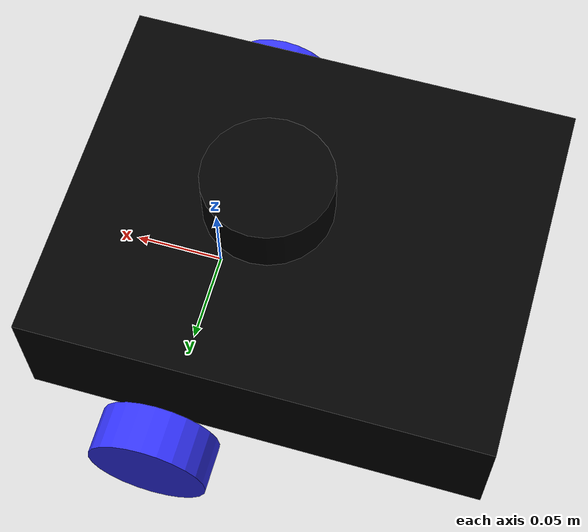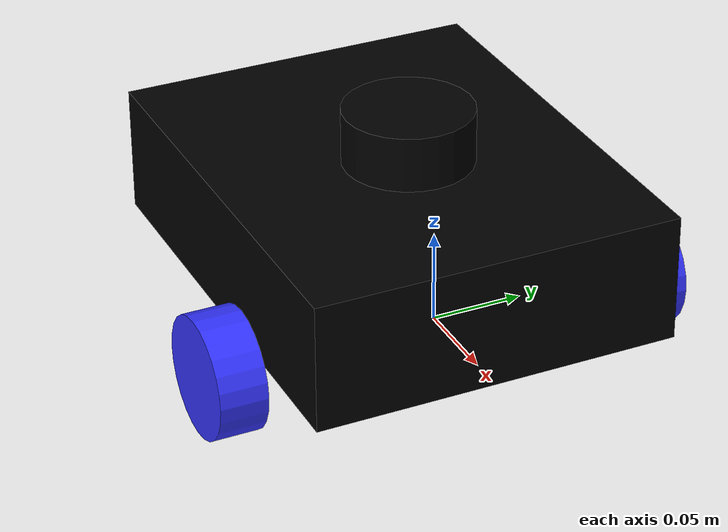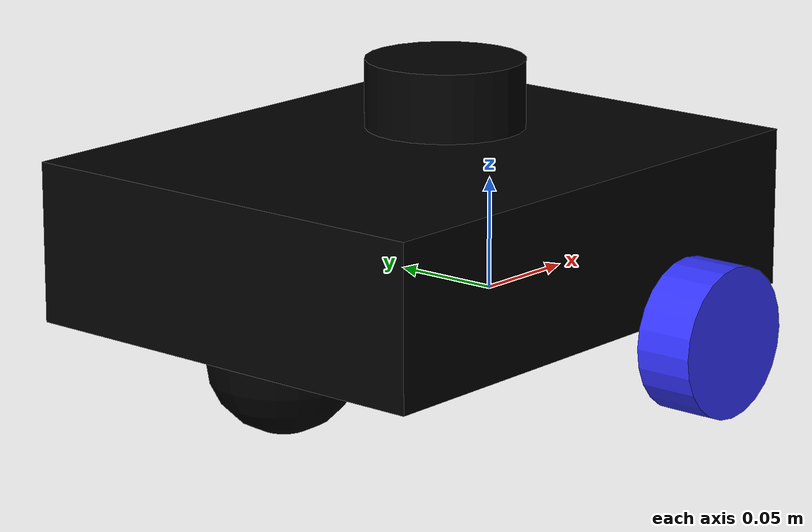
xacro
<?xml version="1.0"?>
<robot xmlns:xacro="http://www.ros.org/wiki/xacro" name="robot">

    <xacro:arg name="use_ros2_control" default="true"/>
    <xacro:arg name="sim_mode" default="false"/>

    <xacro:include filename = "base_robot.xacro"  />

    <xacro:if value="$(arg use_ros2_control)">
        <xacro:include filename="ros2_control.xacro" />
    </xacro:if>

    <xacro:unless value="$(arg use_ros2_control)">
        <xacro:include filename = "control_gazebo.xacro"  />
    </xacro:unless>

    <xacro:include filename = "lidar.xacro"  />

</robot>

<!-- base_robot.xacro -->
<robot xmlns:xacro="http://www.ros.org/wiki/xacro">

    <xacro:include filename="macros_inercia.xacro"/>

    <xacro:property name="largo_chassis" value="0.250"/>
    <xacro:property name="ancho_chassis" value="0.200"/>
    <xacro:property name="altura_chassis" value="0.070"/>
    <xacro:property name="masa_chassis" value="1.0"/>
    <xacro:property name="radio_rueda" value="0.033"/>
    <xacro:property name="ancho_rueda" value="0.026"/>
    <xacro:property name="masa_rueda" value="0.05"/>
    <xacro:property name="rueda_offset_x" value="0.0755"/>
    <xacro:property name="rueda_offset_y" value="0.120"/>
    <xacro:property name="rueda_offset_z" value="0.004"/>
    <xacro:property name="radio_rueda_mobil" value="0.033"/>
    <xacro:property name="masa_rueda_mobil" value="0.01"/>
    <xacro:property name="rueda_mobil_offset_x" value="0.210"/>
    <xacro:property name="rueda_mobil_offset_z" value="-0.004"/>

    <material name="white">
        <color rgba="1 1 1 1" />
    </material>

    <material name="orange">
        <color rgba="1 0.3 0.1 1" />
    </material>

    <material name="blue">
        <color rgba="0.2 0.2 1 1" />
    </material>

    <material name="black">
        <color rgba="0 0 0 1" />
    </material>

    <!-- LINK BASE -->

    <link name ="base_link">

    </link>

    <!-- LINK BASE_FOOTPRINT -->

    <joint name="base_footprint_joint" type="fixed">
        <parent link="base_link"/>
        <child link="base_footprint"/>
        <origin xyz="0 0 0" rpy="0 0 0"/>
    </joint>

    <link name="base_footprint"/>

    <!-- LINK DEL CHASIS -->

    <joint name = "joint_chasis" type ="fixed">
        <parent link ="base_link"/>
        <child link ="chasis"/>
        <origin xyz="${rueda_offset_x} 0 ${rueda_offset_z}"/>
    </joint>

    <link name ="chasis">
        <visual>
            <origin xyz ="${-largo_chassis/2} 0 ${altura_chassis/2}"/>
            <geometry>
                <box size ="${largo_chassis} ${ancho_chassis} ${altura_chassis}"/>
            </geometry>
            <material name ="black"/>
        </visual>
        <collision>
            <origin xyz ="${-largo_chassis/2} 0 ${altura_chassis/2}"/>
            <geometry>
                <box size ="${largo_chassis} ${ancho_chassis} ${altura_chassis}"/>
            </geometry>
        </collision>
        <xacro:inercia_caja masa="1.0" largo="${largo_chassis}" ancho="${ancho_chassis}" altura="${altura_chassis}">
            <origin xyz="${-largo_chassis/2} 0 ${altura_chassis/2}" rpy ="0 0 0"/>
        </xacro:inercia_caja>
    </link>

    <gazebo reference="chasis">
        <material>Gazebo/Black</material>
    </gazebo>

    <!-- LINK RUEDA IZQUIERDA -->

    <joint name = "joint_roda_esquerra" type = "continuous">
        <parent link="base_link"/>
        <child link="roda_esquerra"/>
        <origin xyz="0 ${rueda_offset_y} 0" rpy ="-${pi/2} 0 0"/>
        <axis xyz="0 0 1"/>

    </joint>

    <link name = "roda_esquerra">
        <visual>
            <geometry>
                <cylinder radius = "${radio_rueda}" length="${ancho_rueda}"/>
            </geometry>
            <material name = "blue"/>
        </visual>
        <collision>
            <geometry>
                <cylinder radius = "${radio_rueda}" length="${ancho_rueda}"/>
            </geometry>
        </collision>
        <xacro:inercia_cilindro masa="${masa_rueda}" largo="${ancho_rueda}" radio="${radio_rueda}">
            <origin xyz="0 0 0" rpy ="0 0 0"/>
        </xacro:inercia_cilindro>
    </link>

    <gazebo reference="roda_esquerra">
        <material>Gazebo/Blue</material>
    </gazebo>

    <!-- LINK RUEDA DERECHA -->

    <joint name = "joint_roda_dreta" type = "continuous">
        <parent link="base_link"/>
        <child link="roda_dreta"/>
        <origin xyz="0 ${-rueda_offset_y} 0" rpy ="${pi/2} 0 0"/>
        <axis xyz="0 0 -1"/>

    </joint>

    <link name = "roda_dreta">
        <visual>
            <geometry>
                <cylinder radius = "${radio_rueda}" length="${ancho_rueda}"/>
            </geometry>
            <material name = "blue"/>
        </visual>
        <collision>
            <geometry>
                <cylinder radius = "${radio_rueda}" length="${ancho_rueda}"/>
            </geometry>
        </collision>
        <xacro:inercia_cilindro masa="${masa_rueda}" largo="${ancho_rueda}" radio="${radio_rueda}">
            <origin xyz="0 0 0" rpy ="0 0 0"/>
        </xacro:inercia_cilindro>
    </link>

    <gazebo reference="roda_dreta">
        <material>Gazebo/Blue</material>
    </gazebo>

    <!-- LINK RUEDA MÓVIL -->

    <joint name="joint_roda_mobil" type="fixed">
        <parent link="chasis"/>
        <child link="roda_mobil"/>
        <origin xyz="${-rueda_mobil_offset_x} 0 ${rueda_mobil_offset_z}"/>
    </joint>

    <link name="roda_mobil">
        <visual>
            <geometry>
                <sphere radius="${radio_rueda_mobil}"/>
            </geometry>
            <material name="black"/>
        </visual>
        <collision>
            <geometry>
                <sphere radius="${radio_rueda_mobil}"/>
            </geometry>
        </collision>
        <xacro:inercia_esfera masa="${masa_rueda_mobil}" radio="${radio_rueda_mobil}">
            <origin xyz="0 0 0" rpy ="0 0 0"/>
        </xacro:inercia_esfera>
    </link>

    <gazebo reference="roda_mobil">
        <material>Gazebo/Black</material>
        <mu1 value= "0.001"/>
        <mu2 value= "0.001"/>
    </gazebo>
</robot>

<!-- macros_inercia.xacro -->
<robot xmlns:xacro="http://www.ros.org/wiki/xacro" >

    <!-- Macro para calcular la inercia de una esfera -->
    <xacro:macro name="inercia_esfera" params="masa radio *origin">
        <inertial>
            <xacro:insert_block name="origin"/>
            <mass value="${masa}" />
            <inertia ixx="${(2/5) * masa * (radio*radio)}" ixy="0.0" ixz="0.0"
                    iyy="${(2/5) * masa * (radio*radio)}" iyz="0.0"
                    izz="${(2/5) * masa * (radio*radio)}" />
        </inertial>
    </xacro:macro>

    <!-- Macro para calcular la inercia de un cilindro -->
    <xacro:macro name="inercia_cilindro" params="masa largo radio *origin">
        <inertial>
            <xacro:insert_block name="origin"/>
            <mass value="${masa}" />
            <inertia ixx="${(1/12) * masa * (3*radio*radio + largo*largo)}" ixy="0.0" ixz="0.0"
                    iyy="${(1/12) * masa * (3*radio*radio + largo*largo)}" iyz="0.0"
                    izz="${(1/2) * masa * (radio*radio)}" />
        </inertial>
    </xacro:macro>

    <!-- Macro para calcular la inercia de una caja (paralelepípedo) -->
    <xacro:macro name="inercia_caja" params="masa largo ancho altura *origin">
        <inertial>
            <xacro:insert_block name="origin"/>
            <mass value="${masa}" />
            <inertia ixx="${(1/12) * masa * (ancho*ancho+altura*altura)}" ixy="0.0" ixz="0.0"
                    iyy="${(1/12) * masa * (largo*largo+altura*altura)}" iyz="0.0"
                    izz="${(1/12) * masa * (largo*largo+ancho*ancho)}" />
        </inertial>
    </xacro:macro>
</robot>

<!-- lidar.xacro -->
<robot xmlns:xacro="http://www.ros.org/wiki/xacro">

    <joint name="laser_joint" type="fixed">
        <parent link="chasis"/>
        <child link="laser_frame"/>
        <origin xyz="-0.106 0 0.090" rpy="0 0 0"/>
    </joint>

    <link name="laser_frame">
        <visual>
            <geometry>
                <cylinder radius = "0.035" length="0.03"/>
            </geometry>
            <material name = "black"/>
        </visual>
        <collision>
            <geometry>
                <cylinder radius = "0.035" length="0.03"/>
            </geometry>
        </collision>
        <xacro:inercia_cilindro masa="0.1" largo="0.03" radio="0.035">
            <origin xyz="0 0 0" rpy ="0 0 0"/>
        </xacro:inercia_cilindro>
    </link>

    <gazebo reference="laser_frame">
        <material>Gazebo/DarkGrey</material>

        <sensor type="gpu_lidar" name="laser">
            <pose> 0 0 0 0 0 0 </pose>
            <visualize>true</visualize>
            <update_rate>8</update_rate>
            <ray>
                <scan>
                    <horizontal>
                        <samples>360</samples>
                        <resolution>1</resolution>
                        <min_angle>-3.14</min_angle>
                        <max_angle>3.14</max_angle>
                    </horizontal>
                </scan>
                <range>
                    <min>0.1</min>
                    <max>12.0</max>
                </range>
            </ray>
            <topic>scan</topic>
            <gz_frame_id>laser_frame</gz_frame_id>
        </sensor>
    </gazebo>

 </robot>
